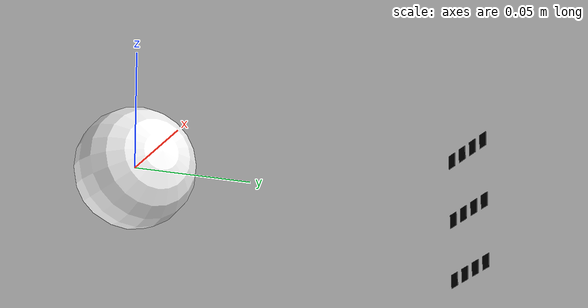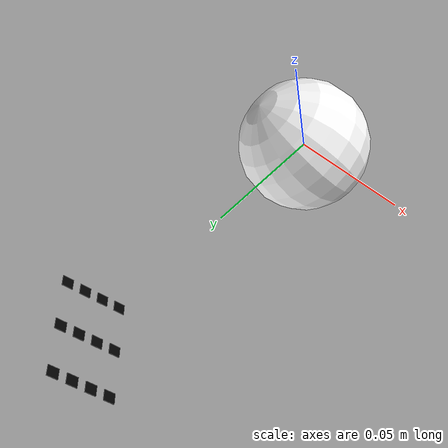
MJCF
<?xml version="1.0"?>
<mujoco>
    <compiler angle="radian"/>
    <option collision="all" timestep="0.002"/>
    <size njmax="1000" nconmax="400"/>
    <default class="main">
        <default class="perturbation-translation">
            <position ctrllimited="true" kp="5"/>
            <joint type="slide" stiffness="0.0" damping="0.5" armature="0.0" limited="true"/>
        </default>

        <default class="perturbation-torsion">
            <position ctrllimited="true" kp="5"/>
            <joint type="hinge" stiffness="0.0" damping="0.5" armature="0.0" limited="true"/>
        </default>

        <default class="eye">
            <position ctrllimited="true" kp="10"/>
            <joint type="hinge" stiffness="0.0" damping="0.05" armature="0.0" limited="true"/>
        </default>

        <default class="smart-glass-grid">
            <geom type="box" size="0.0030 0.0001 0.0030" rgba="0 0 0 1"/>
        </default>

        <default class="background-grid">
            <geom type="box" size="0.008 0.0001 0.008" rgba="1 1 1 0"/>
        </default>
    </default>
    <asset>
        <texture type="skybox" builtin="gradient" rgb1="1 1 1" rgb2="0.6 0.8 1" width="256" height="256"/>
        <texture type="cube" name="blue-eye" file="assets/blue_eye_texture_circle.png" gridsize="3 4" gridlayout=".U..LFRB.D.."/>
        <material name="blue-eye" texture="blue-eye" texuniform="true"/>
        <mesh name="eye" file="assets/basic_eye_2.stl" scale="0.05 0.05 0.05"/>
    </asset>
    <worldbody>
        <light name="scene_directional_light" directional="true" castshadow="false" cutoff="4" exponent="20"
               diffuse="1 1 1" specular="0 0 0" pos=".9 .3 2.5"/>

        <camera name="env" pos="0.35 -0.35 0.15" euler="1.4 0.5 0.12"/>

        <body name="eye" pos="0 0 0" quat="0.7071068 0.7071068 0 0">
            <geom name="eye" type="sphere" size="0.025" material="blue-eye" rgba="1 1 1 1" quat="0.6625191 0.0130711 0.7488417 0.0115643"/>
            <camera name="eye" fovy="90"/>
            <joint name="eye-joint-x" class="eye" axis="1 0 0" range="-0.7854 0.7854"/>
            <joint name="eye-joint-y" class="eye" axis="0 1 0" range="-0.7854 0.7854"/>
            <site name="rangefinder-site" quat="0 0 1 0"/>
        </body>

        <body name="smart-glass-pane-interline-spacing-100" pos="0 0.15 0">
            <geom name="grid-1" pos="-0.015 0 0.0268" class="smart-glass-grid"/>
            <geom name="grid-2" pos="-0.005 0 0.0268" class="smart-glass-grid"/>
            <geom name="grid-3" pos="0.005 0 0.0268" class="smart-glass-grid"/>
            <geom name="grid-4" pos="0.015 0 0.0268" class="smart-glass-grid"/>

            <geom name="grid-5" pos="-0.015 0 0" class="smart-glass-grid"/>
            <geom name="grid-6" pos="-0.005 0 0" class="smart-glass-grid"/>
            <geom name="grid-7" pos="0.005 0 0" class="smart-glass-grid"/>
            <geom name="grid-8" pos="0.015 0 0" class="smart-glass-grid"/>

            <geom name="grid-9" pos="-0.015 0 -0.0268" class="smart-glass-grid"/>
            <geom name="grid-10" pos="-0.005 0 -0.0268" class="smart-glass-grid"/>
            <geom name="grid-11" pos="0.005 0 -0.0268" class="smart-glass-grid"/>
            <geom name="grid-12" pos="0.015 0 -0.0268" class="smart-glass-grid"/>

            <joint name="perturbation-joint-z" class="perturbation-translation" axis="0 0 1" range="-0.10 0.10"/>
            <joint name="perturbation-joint-x" class="perturbation-translation" axis="1 0 0" range="-0.10 0.10"/>
            <joint name="perturbation-joint-y" class="perturbation-torsion" axis="0 1 0" range="-0.10 0.10"/>
        </body>
    </worldbody>
    <actuator>
        <position name="eye-x-motor" joint="eye-joint-x" class="eye" ctrlrange="-0.7854 0.7854"/>
        <position name="eye-y-motor" joint="eye-joint-y" class="eye" ctrlrange="-0.7854 0.7854"/>
        <position name="perturbation-z-motor" joint="perturbation-joint-z" class="perturbation-translation" ctrlrange="-0.10 0.10"/>
        <position name="perturbation-x-motor" joint="perturbation-joint-x" class="perturbation-translation" ctrlrange="-0.10 0.10"/>
        <position name="perturbation-y-motor" joint="perturbation-joint-y" class="perturbation-torsion" ctrlrange="-0.10 0.10"/>
    </actuator>
    <sensor>
        <rangefinder name="rangefinder" site="rangefinder-site"/>
    </sensor>
</mujoco>
